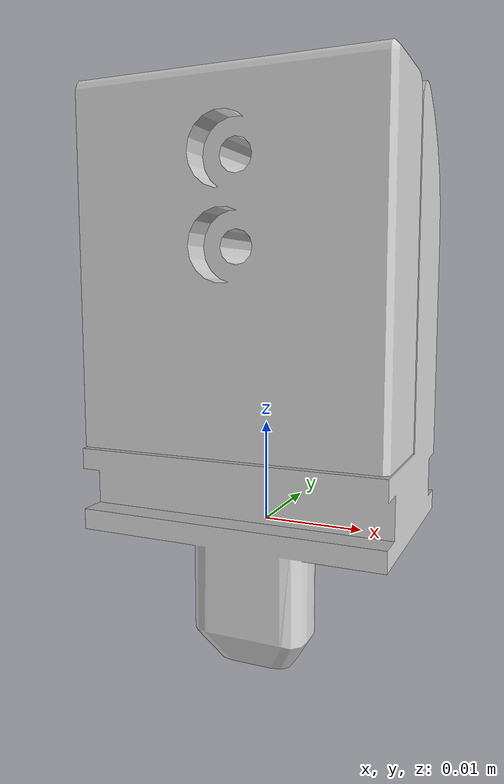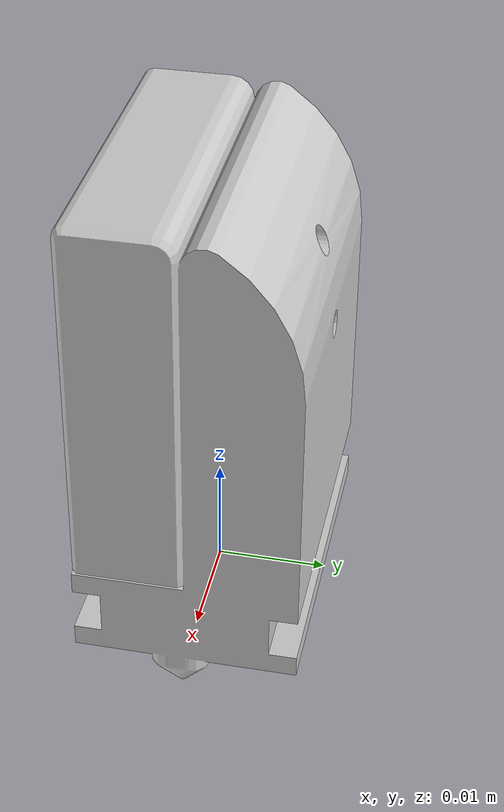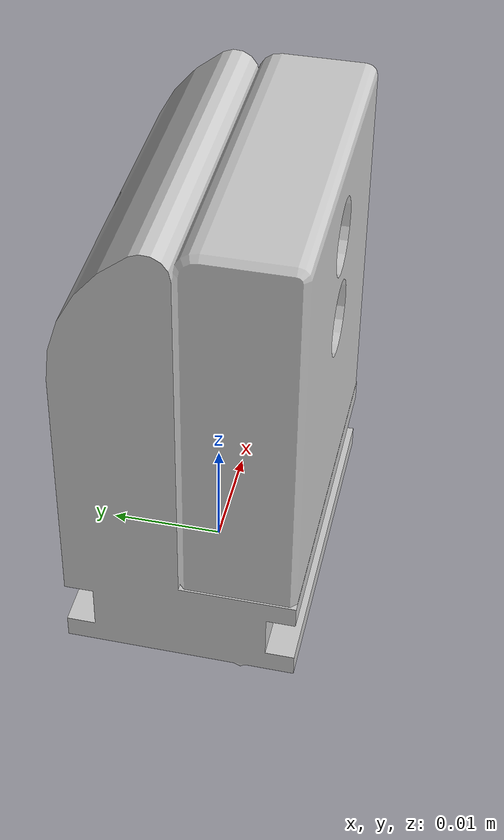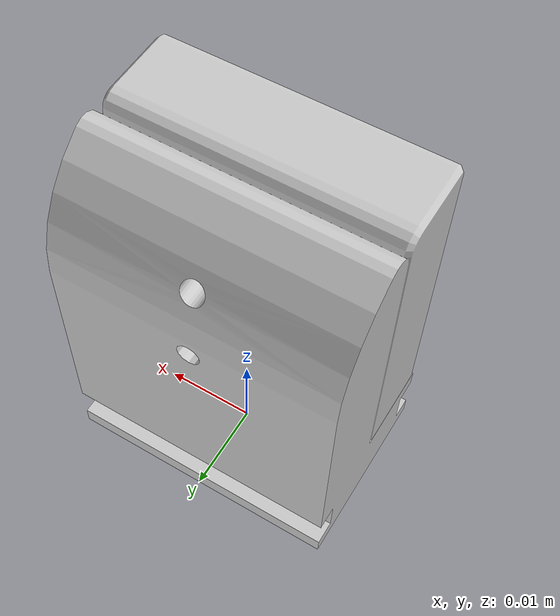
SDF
<?xml version="1.0" ?>
<sdf version="1.6">
  <model name="tooltip1">
    <link name="link">
      <gravity>false</gravity>
      <visual name="visual">
        <geometry>
          <mesh>
            <uri>file:///root/workcell_ws_classic/src/descriptions/ur_description/meshes/quickchanger_grippers/Tooltip_01.STL</uri>
            <scale>1 1 1</scale>
          </mesh>
        </geometry>
        <material>
          <!-- Silver -->
          <ambient>0.8 0.8 0.8 1</ambient>
          <diffuse>0.8 0.8 0.8 1</diffuse>
          <specular>0.2 0.2 0.2 1</specular>
          <emissive>0 0 0 1</emissive>
        </material>
      </visual>

        <inertial>
          <mass>0.5</mass>
          <inertia>
            <ixx>0.001</ixx>
            <ixy>0</ixy>
            <ixz>0</ixz>
            <iyy>0.001</iyy>
            <iyz>0</iyz>
            <izz>0.001</izz>
          </inertia>
        </inertial>
    </link>
  </model>
</sdf>
